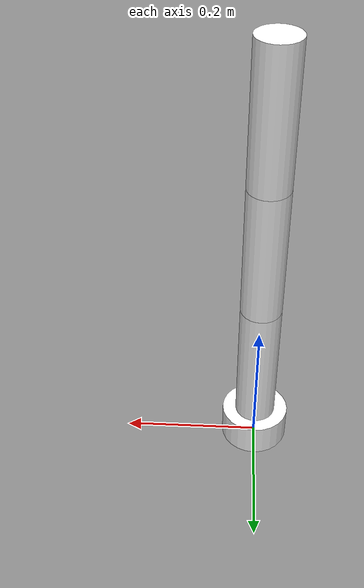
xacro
<?xml version="1.0"?>
<robot xmlns:xacro="http://www.ros.org/wiki/xacro" name="my_robot">
    <xacro:arg name="initial_positions_file" default="initial_positions.yaml" />

    <!-- Import my_robot urdf file -->
    <xacro:include filename="$(find my_robotic_arm_description)/urdf/my_robotic_arm.urdf.xacro" />

    <!-- Import control_xacro -->
    <xacro:include filename="my_robot.ros2_control.xacro" />

    <xacro:my_robot_ros2_control name="FakeSystem" initial_positions_file="$(arg initial_positions_file)"/>

</robot>

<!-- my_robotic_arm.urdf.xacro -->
<robot name="my_robot" xmlns:xacro= "http://www.ros.org/wiki/xacro">

    <material name="white">
        <color rgba="1 1 1 1" />
    </material>

    <link name="base_link">
        <visual>
            <geometry>
                <cylinder length="0.05" radius="0.05"/>
            </geometry>
            <origin xyz="0 0 0.025" rpy="0 0 0" />
            <material name="white" />
        </visual>
        <collision>
            <geometry>
                <cylinder length="0.05" radius="0.05"/>
            </geometry>
            <origin xyz="0 0 0.025" rpy="0 0 0" />
        </collision>
    </link>

    <xacro:macro name="arm_link" params="prefix length radius mass">
        <link name="${prefix}_link">
            <visual>
                <geometry>
                    <cylinder length="${length}" radius="${radius}"/>
                </geometry>
                <origin xyz="0 0 ${length/2}" rpy="0 0 0" />
                <material name="white" />
            </visual>
            <collision>
                <geometry>
                    <cylinder length="${length-radius-0.01}" radius="${radius-0.01}"/>
                </geometry>
                <origin xyz="0 0 ${length/2+radius/2}" rpy="0 0 0" />
            </collision>
            <inertial>
                <origin xyz="0 0 0" rpy="0 0 0"/>
                <mass value="${mass}"/>
                <inertia
                    ixx="${ (1/12.0) * mass * (3*radius*radius + length*length) }"
                    iyy="${ (1/12.0) * mass * (3*radius*radius + length*length) }"
                    izz="${ 0.5 * mass * radius*radius }"
                    ixy="0"
                    ixz="0"
                    iyz="0"/>
            </inertial>
        </link>
    </xacro:macro>

    <xacro:arm_link prefix="first" length="0.2" radius="0.03" mass="0.8" />
    <xacro:arm_link prefix="second" length="0.2" radius="0.03" mass="0.8" />
    <xacro:arm_link prefix="third" length="0.2" radius="0.03" mass="0.8" />

    <link name="tcp_link" />

    <joint name="base_first_joint" type="revolute">
        <parent link="base_link" />
        <child link="first_link" />
        <origin xyz="0 0 0.05" rpy="0 0 0" />
        <axis xyz="0 0 1" />
        <limit lower="-3.14" upper="3.14" effort="20" velocity="3.14"/>
    </joint>
    <joint name="first_second_joint" type="revolute">
        <parent link="first_link" />
        <child link="second_link" />
        <origin xyz="0 0 0.2" rpy="0 0 0" />
        <axis xyz="1 0 0" />
        <limit lower="-3.14" upper="3.14" effort="20" velocity="3.14"/>
    </joint>
    <joint name="second_third_joint" type="revolute">
        <parent link="second_link" />
        <child link="third_link" />
        <origin xyz="0 0 0.2" rpy="0 0 0" />
        <axis xyz="1 0 0" />
        <limit lower="-3.14" upper="3.14" effort="20" velocity="3.14"/>
    </joint>
    <joint name="tcp" type="fixed">
        <parent link="third_link" />
        <child link="tcp_link" />
        <origin xyz="0 0 0.2" rpy="0 0 0" />
    </joint>

</robot>
